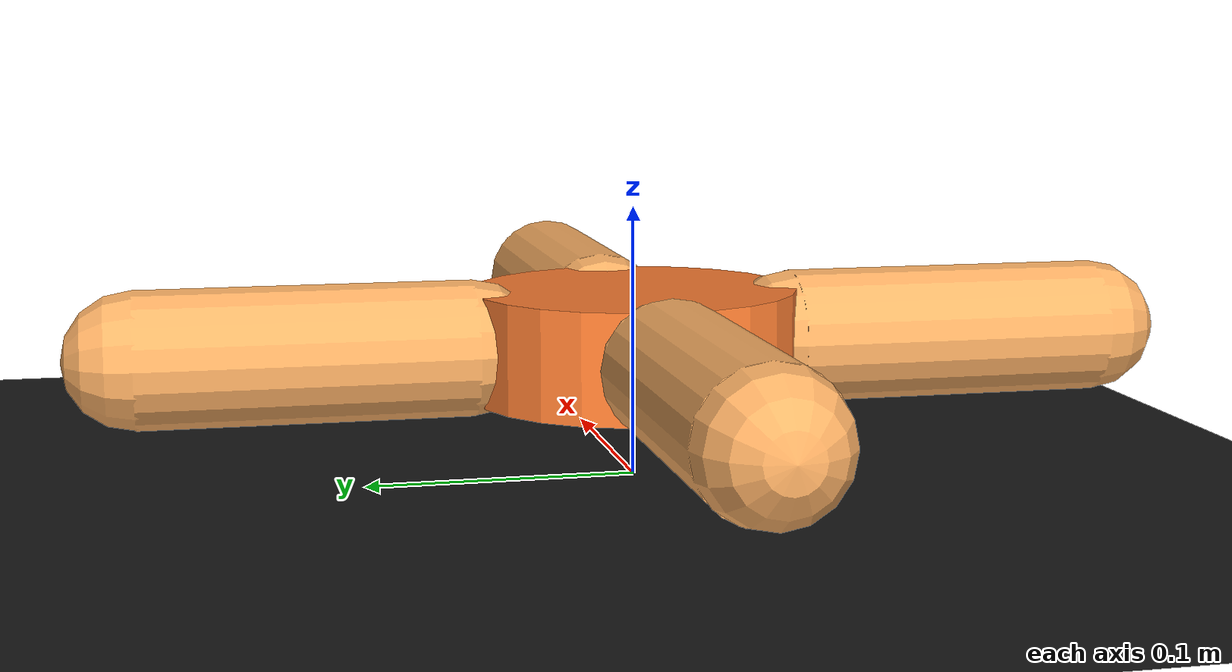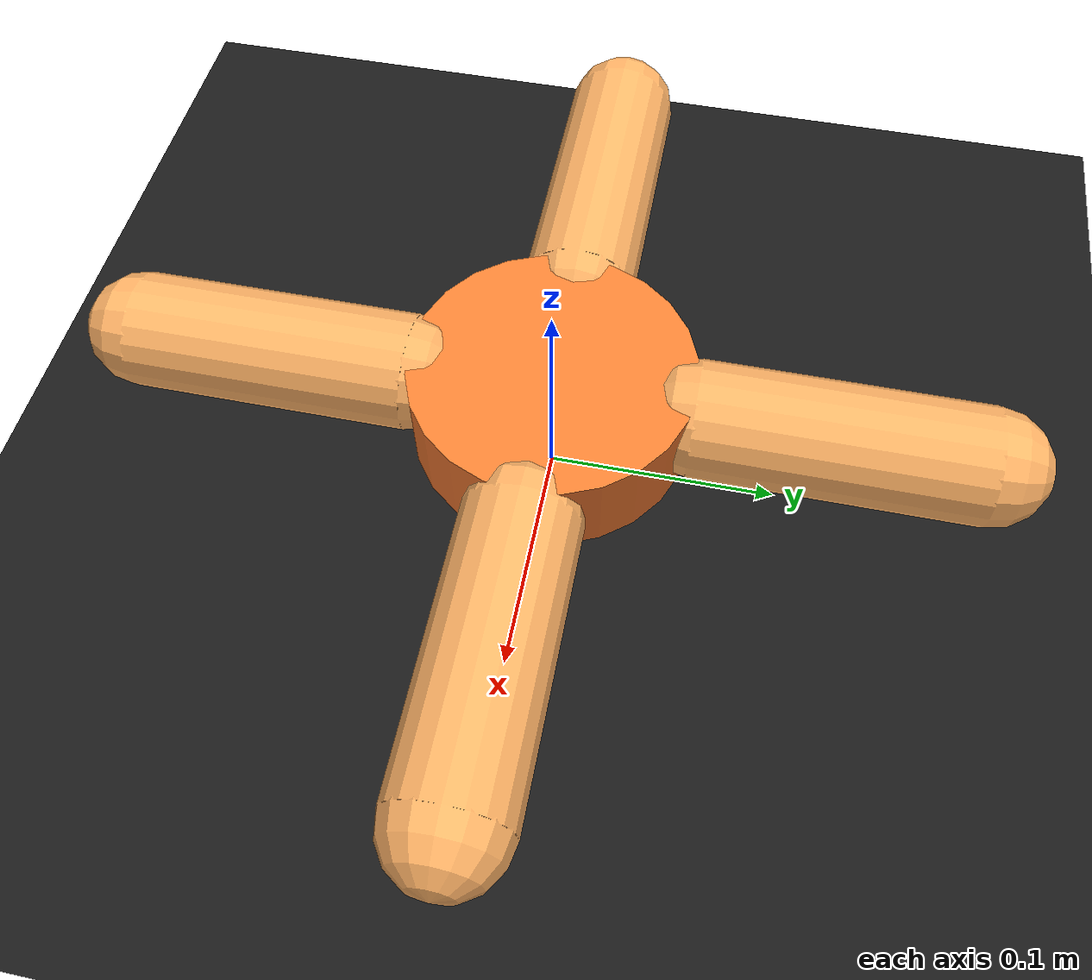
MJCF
<mujoco model="Starfish2D_Swimmer">

    <compiler angle="degree" inertiafromgeom="true"/>
    <option timestep="0.01" gravity="0 0 0" integrator="RK4"/>

    <default>
        <joint damping="0.05" stiffness="0" armature="0.01"/>
        <motor ctrlrange="-1 1" ctrllimited="true"/>
        <geom solref="0.001 1" solimp="0.9 0.95 0.001"/>
    </default>

    <asset>
        <material name="center" rgba="1.0 0.5 0.2 1"/>
        <material name="arm"    rgba="1.0 0.7 0.4 1"/>
    </asset>

    <worldbody>
        <geom type="plane" size="5 5 0.1" rgba="0.1 0.1 0.1 1" pos="0 0 0"/>

        <!-- Center body. -->
        <body name="root" pos="0 0 0.05">
            <joint name="free_xy" type="free"/>

            <!-- Center disk. -->
            <geom name="center_geom" type="cylinder"
                  size="0.06 0.02"
                  material="center"
                  density="500"/>

            <!-- Upper arm toward +y. -->
            <body name="arm_up" pos="0 0.06 0">
                <joint name="joint_up" type="hinge" axis="0 0 1" range="-60 60" pos="0 0 0"/>
                <geom name="arm_up_geom" type="capsule"
                      fromto="0 0 0  0 0.12 0"
                      size="0.025"
                      material="arm"
                      density="500"/>
            </body>

            <!-- Lower arm toward -y. -->
            <body name="arm_down" pos="0 -0.06 0">
                <joint name="joint_down" type="hinge" axis="0 0 1" range="-60 60" pos="0 0 0"/>
                <geom name="arm_down_geom" type="capsule"
                      fromto="0 0 0  0 -0.12 0"
                      size="0.025"
                      material="arm"
                      density="500"/>
            </body>

            <!-- Left arm toward -x. -->
            <body name="arm_left" pos="-0.06 0 0">
                <joint name="joint_left" type="hinge" axis="0 0 1" range="-60 60" pos="0 0 0"/>
                <geom name="arm_left_geom" type="capsule"
                      fromto="0 0 0  -0.12 0 0"
                      size="0.025"
                      material="arm"
                      density="500"/>
            </body>

            <!-- Right arm toward +x. -->
            <body name="arm_right" pos="0.06 0 0">
                <joint name="joint_right" type="hinge" axis="0 0 1" range="-60 60" pos="0 0 0"/>
                <geom name="arm_right_geom" type="capsule"
                      fromto="0 0 0  0.12 0 0"
                      size="0.025"
                      material="arm"
                      density="500"/>
            </body>
        </body>
        <light directional="true" diffuse="0.9 0.9 0.9" pos="0 0 5" dir="0 0 -1"/>
    </worldbody>

    <actuator>
        <motor joint="joint_up" gear="0.15"/>
        <motor joint="joint_down" gear="0.15"/>
        <motor joint="joint_left" gear="0.15"/>
        <motor joint="joint_right" gear="0.15"/>
    </actuator>

</mujoco>
